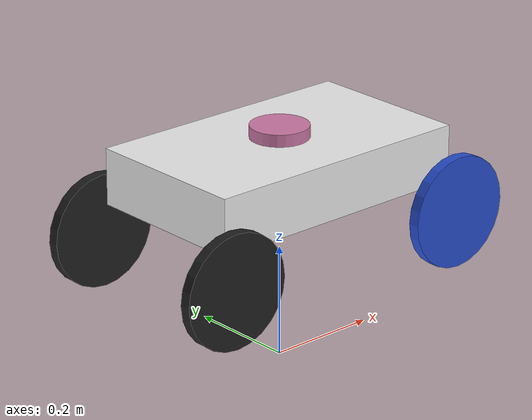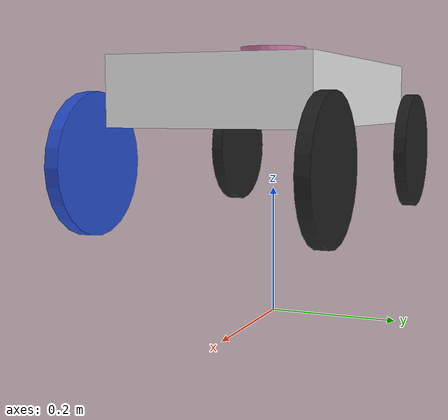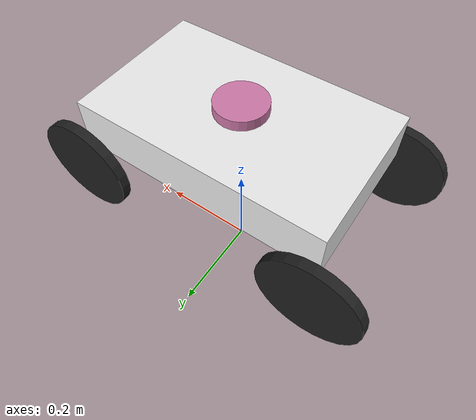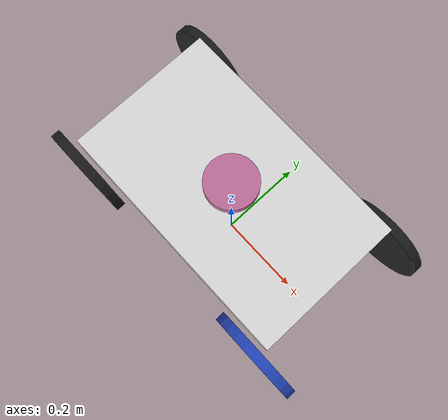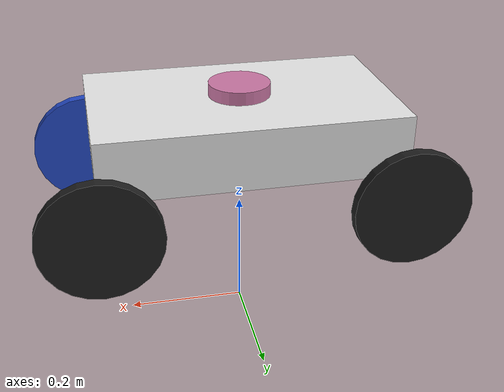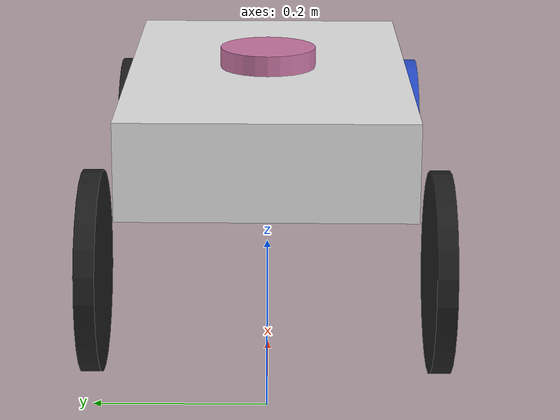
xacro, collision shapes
<?xml version="1.0"?>

<robot name="my_robot" xmlns:xacro="http://ros.org/wiki/xacro">
	<xacro:include filename="$(find velodyne_description)/urdf/VLP-16.urdf.xacro" />
	<xacro:include filename="$(find velodyne_description)/urdf/HDL-32E.urdf.xacro"/>

	<xacro:arg name="gpu" default="false"/>
  	<xacro:property name="gpu" value="$(arg gpu)" />

	<property name="base_width_x" value="0.5"/>
	<property name="base_width_y" value="0.3" />
	<property name="base_height" value="0.1"/>

	<property name="wheel_radius" value="0.1" />
	<property name="wheel_length" value="0.02" />

	<property name="cylinder_length" value="0.2" />

	<property name="hokuyo_size" value="0.05" />

	<property name="PI" value="3.141592" />

  <macro name="cylinder_inertia" params="m r h">
    <inertia  ixx="${m*(3*r*r+h*h)/12}" ixy = "0" ixz = "0"
              iyy="${m*(3*r*r+h*h)/12}" iyz = "0"
              izz="${m*r*r/2}" />
  </macro>

	  <link name="base_footprint">
		<visual>
		    <origin xyz="0 0 0" rpy="0 0 0" />
		    <geometry>
		        <box size="0.001 0.001 0.001" />
		    </geometry>
		</visual>
	  </link>

	<joint name="base_footprint_joint" type="fixed">
		<origin xyz="0 0 ${wheel_radius + base_height/2}" rpy="0 0 0" />
		<parent link="base_footprint"/>
		<child link="base_link" />
	 </joint>
  <gazebo reference="base_footprint">
    <turnGravityOff>false</turnGravityOff>
  </gazebo>

	<link name="base_link">
		<visual>
			<origin xyz="0 0 ${wheel_radius + base_height/2}" rpy="0 0 0" />
			<geometry>
				<box size="${base_width_x} ${base_width_y} ${base_height}" />
			</geometry>
		</visual>

		<collision>
			<origin xyz="0 0 ${wheel_radius + base_height}" rpy="0 0 0" />
			<geometry>
				<box size="${base_width_x} ${base_width_y} ${base_height}" />
			</geometry>
		</collision>

		<inertial>
		  <origin xyz="0 0 0" rpy="0 0 0"/>
		  <mass value="1"/>
		  <inertia
		    ixx="1.0" ixy="0.0" ixz="0.0"
		    iyy="1.0" iyz="0.0"
		    izz="1.0"/>
		</inertial>
	</link>

	<gazebo reference="base_link" >
		<material>Gazebo/White</material>
	</gazebo>

	<link name="bl_wheel">
		<visual>
			<origin xyz="0 0 0" rpy="${PI/2} 0 0 " />
			<geometry>
				<cylinder length="${wheel_length}" radius="${wheel_radius}" />
			</geometry>
		</visual>

		<collision>
			<origin xyz="0 0 0" rpy="${PI/2} 0 0 " />
			<geometry>
				<cylinder length="${wheel_length}" radius="${wheel_radius}" />
			</geometry>
		</collision>

		<inertial>
      		<origin xyz="0 0 0" rpy="${PI/2} 0 0"/>
      		<mass value="1"/>
			<cylinder_inertia  m="1" r="${wheel_radius}" h="${wheel_length}" />
    	</inertial>
	</link>

	<gazebo reference="bl_wheel" >
		<material>Gazebo/Black</material>
	</gazebo>

	<joint name="bl_wheel_joint" type="continuous" >
		<origin xyz="${-base_width_x/2} ${base_width_y/2 + wheel_length} ${wheel_radius}" rpy="0 0 0" />
		<parent link="base_link" />
		<child link="bl_wheel" />
    <axis xyz="0 1 0" rpy="0  0" />
    <limit effort="100" velocity="100"/>
    <joint_properties damping="0.0" friction="0.0"/>
	</joint>

	<transmission name="bl_wheel_joint_trans">
		<type>transmission_interface/SimpleTransmission</type>
		<joint name="bl_wheel_joint" />
		<actuator name="bl_wheel_joint_motor">
			<hardwareInterface>EffortJointInterface</hardwareInterface>
			<mechanicalReduction>1</mechanicalReduction>
		</actuator>
	</transmission>

	<link name="fl_wheel">
		<visual>
			<origin xyz="0 0 0" rpy="${PI/2} 0 0 " />
			<geometry>
				<cylinder length="${wheel_length}" radius="${wheel_radius}" />
			</geometry>
		</visual>

		<collision>
			<origin xyz="0 0 0" rpy="${PI/2} 0 0 " />
			<geometry>
				<cylinder length="${wheel_length}" radius="${wheel_radius}" />
			</geometry>
		</collision>
		<inertial>
			<origin xyz="0 0 0" rpy="${PI/2} 0 0"/>
			<mass value="1"/>
			<cylinder_inertia  m="1" r="${wheel_radius}" h="${wheel_length}" />
		</inertial>
	</link>

	<gazebo reference="fl_wheel" >
		<material>Gazebo/Black</material>
	</gazebo>

	<joint name="fl_wheel_joint" type="continuous" >
		<origin xyz="${base_width_x/2} ${base_width_y/2 + wheel_length} ${wheel_radius}" rpy="0 0 0" />
		<parent link="base_link" />
		<child link="fl_wheel" />
    <axis xyz="0 1 0" rpy="0  0" />
    <limit effort="100" velocity="100"/>
    <joint_properties damping="0.0" friction="0.0"/>
	</joint>

	<transmission name="fl_wheel_joint_trans">
		<type>transmission_interface/SimpleTransmission</type>
		<joint name="fl_wheel_joint" />
		<actuator name="fl_wheel_joint_motor">
			<hardwareInterface>EffortJointInterface</hardwareInterface>
			<mechanicalReduction>1</mechanicalReduction>
		</actuator>
	</transmission>

	<link name="br_wheel">
		<visual>
			<origin xyz="0 0 0" rpy="${PI/2} 0 0 " />
			<geometry>
				<cylinder length="${wheel_length}" radius="${wheel_radius}" />
			</geometry>
		</visual>

		<collision>
			<origin xyz="0 0 0" rpy="${PI/2} 0 0 " />
			<geometry>
				<cylinder length="${wheel_length}" radius="${wheel_radius}" />
			</geometry>
		</collision>

		<inertial>
      <origin xyz="0 0 0" rpy="${PI/2} 0 0"/>
      <mass value="1"/>
			<cylinder_inertia  m="1" r="${wheel_radius}" h="${wheel_length}" />
    </inertial>
	</link>

	<gazebo reference="br_wheel" >
		<material>Gazebo/Black</material>
	</gazebo>

	<joint name="br_wheel_joint" type="continuous" >
		<origin xyz="${-base_width_x/2} ${-base_width_y/2 - wheel_length} ${wheel_radius}" rpy="0 0 0" />
		<parent link="base_link" />
		<child link="br_wheel" />
    <axis xyz="0 1 0" rpy="0  0" />
    <limit effort="100" velocity="100"/>
    <joint_properties damping="0.0" friction="0.0"/>
	</joint>

	<transmission name="br_wheel_joint_trans">
		<type>transmission_interface/SimpleTransmission</type>
		<joint name="br_wheel_joint" />
		<actuator name="br_wheel_joint_motor">
			<hardwareInterface>EffortJointInterface</hardwareInterface>
			<mechanicalReduction>1</mechanicalReduction>
		</actuator>
	</transmission>

	<link name="fr_wheel">
		<visual>
			<origin xyz="0 0 0" rpy="${PI/2} 0 0 " />
			<geometry>
				<cylinder length="${wheel_length}" radius="${wheel_radius}" />
			</geometry>
		</visual>

		<collision>
			<origin xyz="0 0 0" rpy="${PI/2} 0 0 " />
			<geometry>
				<cylinder length="${wheel_length}" radius="${wheel_radius}" />
			</geometry>
		</collision>

		<inertial>
      <origin xyz="0 0 0" rpy="${PI/2} 0 0"/>
      <mass value="1"/>
			<cylinder_inertia  m="1" r="${wheel_radius}" h="${wheel_length}" />
    </inertial>
	</link>

	<gazebo reference="fr_wheel" >
		<material>Gazebo/Blue</material>
	</gazebo>

	<joint name="fr_wheel_joint" type="continuous" >
		<origin xyz="${base_width_x/2} ${-base_width_y/2 - wheel_length} ${wheel_radius}" rpy="0 0 0" />
		<parent link="base_link" />
		<child link="fr_wheel" />
    <axis xyz="0 1 0" rpy="0  0" />
    <limit effort="100" velocity="100"/>
    <joint_properties damping="0.0" friction="0.0"/>
	</joint>

	<transmission name="fr_wheel_joint_trans">
		<type>transmission_interface/SimpleTransmission</type>
		<joint name="fr_wheel_joint" />
		<actuator name="fr_wheel_joint_motor">
			<hardwareInterface>EffortJointInterface</hardwareInterface>
			<mechanicalReduction>1</mechanicalReduction>
		</actuator>
	</transmission>

  <!-- impport Velodyne VLP-16 model on top of my_robot base link -->

  <VLP-16 parent="base_link" name="velodyne" topic="/velodyne_points">
      <origin xyz="0 0 0.2" rpy="0 0 0" />
  </VLP-16>

  <gazebo>
	<plugin name="velodyne_control" filename="libvelodyne_plugin.so"/>
  </gazebo>

  <gazebo>
    <plugin name="differential_drive_controller" filename="libgazebo_ros_diff_drive.so">

      <rosDebugLevel>Debug</rosDebugLevel>
      <publishWheelTF>false</publishWheelTF>
      <robotNamespace>/</robotNamespace>
      <publishTf>1</publishTf>
      <publishWheelJointState>false</publishWheelJointState>
      <alwaysOn>true</alwaysOn>
      <updateRate>100.0</updateRate>
      <leftJoint>bl_wheel_joint</leftJoint>
      <rightJoint>br_wheel_joint</rightJoint>
      <wheelSeparation>${base_width_y + 2*wheel_length}</wheelSeparation>
      <wheelDiameter>${2*wheel_radius}</wheelDiameter>
      <broadcastTF>1</broadcastTF>
      <wheelTorque>30</wheelTorque>
      <wheelAcceleration>1.8</wheelAcceleration>
      <commandTopic>cmd_vel</commandTopic>
      <odometryFrame>odom</odometryFrame>
      <odometryTopic>odom</odometryTopic>
      <robotBaseFrame>base_link</robotBaseFrame>
      <legacyMode>false</legacyMode>
      <odometrySource>world</odometrySource>
      <publishTf>1</publishTf>

    </plugin>
  </gazebo>

</robot>

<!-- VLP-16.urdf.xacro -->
<robot xmlns:xacro="http://www.ros.org/wiki/xacro" name="VLP-16">
  <xacro:property name="M_PI" value="3.1415926535897931" />
  <xacro:macro name="VLP-16" params="*origin parent:=base_link name:=velodyne tf_prefix:='' topic:=/velodyne_points organize_cloud:=false hz:=10 lasers:=16 samples:=1875 collision_range:=0.3 min_range:=0.9 max_range:=130.0 noise:=0.008 min_angle:=-${M_PI} max_angle:=${M_PI} gpu:=false">

    <joint name="${name}_base_mount_joint" type="fixed">
      <xacro:insert_block name="origin" />
      <parent link="${parent}"/>
      <child link="${name}_base_link"/>
    </joint>

    <link name="${name}_base_link">
      <inertial>
        <mass value="0.83"/>
        <origin xyz="0 0 0.03585"/>
        <inertia ixx="${(0.83 * (3.0*0.0516*0.0516 + 0.0717*0.0717)) / 12.0}" ixy="0" ixz="0"
          iyy="${(0.83 * (3.0*0.0516*0.0516 + 0.0717*0.0717)) / 12.0}" iyz="0"
          izz="${0.5 * 0.83 * (0.0516*0.0516)}"/>
      </inertial>
      <visual>
        <geometry>
          <mesh filename="package://velodyne_description/meshes/VLP16_base_1.dae" />
        </geometry>
      </visual>
      <visual>
        <geometry>
          <mesh filename="package://velodyne_description/meshes/VLP16_base_2.dae" />
        </geometry>
      </visual>
      <collision>
        <origin rpy="0 0 0" xyz="0 0 0.03585"/>
        <geometry>
          <cylinder radius="0.0516" length="0.0717"/>
        </geometry>
      </collision>
    </link>

    <joint name="${name}_base_scan_joint" type="fixed" >
      <origin xyz="0 0 0.0377" rpy="0 0 0" />
      <parent link="${name}_base_link" />
      <child link="${name}"/>
    </joint>

    <link name="${name}">
      <inertial>
        <mass value="0.01"/>
        <origin xyz="0 0 0"/>
        <inertia ixx="1e-7" ixy="0" ixz="0" iyy="1e-7" iyz="0" izz="1e-7"/>
      </inertial>
      <visual>
        <origin xyz="0 0 -0.0377" />
        <geometry>
          <mesh filename="package://velodyne_description/meshes/VLP16_scan.dae" />
        </geometry>
      </visual>
      <collision>
        <geometry>
          <sphere radius="0"/>
        </geometry>
      </collision>
    </link>

    <!-- Gazebo requires the velodyne_gazebo_plugins package -->
    <gazebo reference="${name}">
      <xacro:if value="${gpu}">
        <sensor type="gpu_ray" name="${name}-VLP16">
          <pose>0 0 0 0 0 0</pose>
          <visualize>false</visualize>
          <update_rate>${hz}</update_rate>
          <ray>
            <scan>
              <horizontal>
                <samples>${samples}</samples>
                <resolution>1</resolution>
                <min_angle>${min_angle}</min_angle>
                <max_angle>${max_angle}</max_angle>
              </horizontal>
              <vertical>
                <samples>${lasers}</samples>
                <resolution>1</resolution>
                <min_angle>-${5.0*M_PI/180.0}</min_angle>
                <max_angle> ${85.0*M_PI/180.0}</max_angle>
              </vertical>
            </scan>
            <range>
              <min>${collision_range}</min>
              <max>${max_range+1}</max>
              <resolution>0.001</resolution>
            </range>
            <noise>
              <type>gaussian</type>
              <mean>0.0</mean>
              <stddev>0.0</stddev>
            </noise>
          </ray>
          <plugin name="gazebo_ros_laser_controller" filename="libgazebo_ros_velodyne_laser.so">
            <ros>
              <namespace>/${name}</namespace>
              <remapping>~/out:=${topic}</remapping>
            </ros>
            <tf_prefix>${tf_prefix}</tf_prefix>
            <frame_name>${name}</frame_name>
            <organize_cloud>${organize_cloud}</organize_cloud>
            <min_range>${min_range}</min_range>
            <max_range>${max_range}</max_range>
            <gaussian_noise>${noise}</gaussian_noise>
          </plugin>
        </sensor>
      </xacro:if>
      <xacro:unless value="${gpu}">
        <sensor type="ray" name="${name}-VLP16">
          <pose>0 0 0 0 0 0</pose>
          <visualize>false</visualize>
          <update_rate>${hz}</update_rate>
          <ray>
            <scan>
              <horizontal>
                <samples>${samples}</samples>
                <resolution>1</resolution>
                <min_angle>${min_angle}</min_angle>
                <max_angle>${max_angle}</max_angle>
              </horizontal>
              <vertical>
                <samples>${lasers}</samples>
                <resolution>1</resolution>
                <min_angle>-${5.0*M_PI/180.0}</min_angle>
                <max_angle> ${85.0*M_PI/180.0}</max_angle>
              </vertical>
            </scan>
            <range>
              <min>${collision_range}</min>
              <max>${max_range+1}</max>
              <resolution>0.001</resolution>
            </range>
            <noise>
              <type>gaussian</type>
              <mean>0.0</mean>
              <stddev>0.0</stddev>
            </noise>
          </ray>
          <plugin name="gazebo_ros_laser_controller" filename="libgazebo_ros_velodyne_laser.so">
            <ros>
              <namespace>/${name}</namespace>
              <remapping>~/out:=${topic}</remapping>
            </ros>
            <tf_prefix>${tf_prefix}</tf_prefix>
            <frame_name>${name}</frame_name>
            <organize_cloud>${organize_cloud}</organize_cloud>
            <min_range>${min_range}</min_range>
            <max_range>${max_range}</max_range>
            <gaussian_noise>${noise}</gaussian_noise>
          </plugin>
        </sensor>
      </xacro:unless>
    </gazebo>

  </xacro:macro>
</robot>

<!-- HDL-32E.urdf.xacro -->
<robot xmlns:xacro="http://www.ros.org/wiki/xacro" name="HDL-32E">
  <xacro:property name="M_PI" value="3.1415926535897931" />
  <xacro:macro name="HDL-32E" params="*origin parent:=base_link name:=velodyne tf_prefix:='' topic:=/velodyne_points organize_cloud:=false hz:=10 lasers:=32 samples:=2187 collision_range:=0.3 min_range:=0.9 max_range:=130.0 noise:=0.008 min_angle:=-${M_PI} max_angle:=${M_PI} gpu:=false">

    <joint name="${name}_base_mount_joint" type="fixed">
      <xacro:insert_block name="origin" />
      <parent link="${parent}"/>
      <child link="${name}_base_link"/>
    </joint>

    <link name="${name}_base_link">
      <inertial>
        <mass value="1.0"/>
        <origin xyz="0 0 0.07212"/>
        <inertia ixx="${(1.0 * (3.0*0.04267*0.04267 + 0.14424*0.14424)) / 12.0}" ixy="0" ixz="0"
          iyy="${(1.0 * (3.0*0.04267*0.04267 + 0.14424*0.14424)) / 12.0}" iyz="0"
          izz="${0.5 * 1.0 * (0.04267*0.04267)}"/>
      </inertial>
      <visual>
        <geometry>
          <mesh filename="package://velodyne_description/meshes/HDL32E_base.dae" />
        </geometry>
      </visual>
      <collision>
        <origin rpy="0 0 0" xyz="0 0 0.07212"/>
        <geometry>
          <cylinder radius="0.04267" length="0.14424"/>
        </geometry>
      </collision>
    </link>

    <joint name="${name}_base_scan_joint" type="fixed" >
      <origin xyz="0 0 0.09081" rpy="0 0 0" />
      <parent link="${name}_base_link" />
      <child link="${name}"/>
    </joint>

    <link name="${name}">
      <inertial>
        <mass value="0.01"/>
        <origin xyz="0 0 0"/>
        <inertia ixx="1e-7" ixy="0" ixz="0" iyy="1e-7" iyz="0" izz="1e-7"/>
      </inertial>
      <visual>
        <origin xyz="0 0 -0.09081" rpy="0 0 0" />
        <geometry>
          <mesh filename="package://velodyne_description/meshes/HDL32E_scan.dae" />
        </geometry>
      </visual>
      <collision>
        <geometry>
          <sphere radius="0"/>
        </geometry>
      </collision>
    </link>

    <!-- Gazebo requires the velodyne_gazebo_plugins package -->
    <gazebo reference="${name}">
      <xacro:if value="${gpu}">
        <sensor type="gpu_ray" name="${name}-HDL32E">
          <pose>0 0 0 0 0 0</pose>
          <visualize>false</visualize>
          <update_rate>${hz}</update_rate>
          <ray>
            <scan>
              <horizontal>
                <samples>${samples}</samples>
                <resolution>1</resolution>
                <min_angle>${min_angle}</min_angle>
                <max_angle>${max_angle}</max_angle>
              </horizontal>
              <vertical>
                <samples>${lasers}</samples>
                <resolution>1</resolution>
                <min_angle>-${5.0*M_PI/180.0}</min_angle>
                <max_angle> ${85.0*M_PI/180.0}</max_angle>
              </vertical>
            </scan>
            <range>
              <min>${collision_range}</min>
              <max>${max_range+1}</max>
              <resolution>0.001</resolution>
            </range>
            <noise>
              <type>gaussian</type>
              <mean>0.0</mean>
              <stddev>0.0</stddev>
            </noise>
          </ray>
          <plugin name="gazebo_ros_laser_controller" filename="libgazebo_ros_velodyne_laser.so">
            <ros>
              <namespace>/${name}</namespace>
              <remapping>~/out:=${topic}</remapping>
            </ros>
            <tf_prefix>${tf_prefix}</tf_prefix>
            <frame_name>${name}</frame_name>
            <organize_cloud>${organize_cloud}</organize_cloud>
            <min_range>${min_range}</min_range>
            <max_range>${max_range}</max_range>
            <gaussian_noise>${noise}</gaussian_noise>
          </plugin>
        </sensor>
      </xacro:if>
      <xacro:unless value="${gpu}">
        <sensor type="ray" name="${name}-HDL32E">
          <pose>0 0 0 0 0 0</pose>
          <visualize>false</visualize>
          <update_rate>${hz}</update_rate>
          <ray>
            <scan>
              <horizontal>
                <samples>${samples}</samples>
                <resolution>1</resolution>
                <min_angle>${min_angle}</min_angle>
                <max_angle>${max_angle}</max_angle>
              </horizontal>
              <vertical>
                <samples>${lasers}</samples>
                <resolution>1</resolution>
                <min_angle>-${5.0*M_PI/180.0}</min_angle>
                <max_angle> ${85.0*M_PI/180.0}</max_angle>
              </vertical>
            </scan>
            <range>
              <min>${collision_range}</min>
              <max>${max_range+1}</max>
              <resolution>0.001</resolution>
            </range>
            <noise>
              <type>gaussian</type>
              <mean>0.0</mean>
              <stddev>0.0</stddev>
            </noise>
          </ray>
          <plugin name="gazebo_ros_laser_controller" filename="libgazebo_ros_velodyne_laser.so">
            <ros>
              <namespace>/${name}</namespace>
              <remapping>~/out:=${topic}</remapping>
            </ros>
            <tf_prefix>${tf_prefix}</tf_prefix>
            <frame_name>${name}</frame_name>
            <organize_cloud>${organize_cloud}</organize_cloud>
            <min_range>${min_range}</min_range>
            <max_range>${max_range}</max_range>
            <gaussian_noise>${noise}</gaussian_noise>
          </plugin>
        </sensor>
      </xacro:unless>
    </gazebo>

  </xacro:macro>
</robot>
